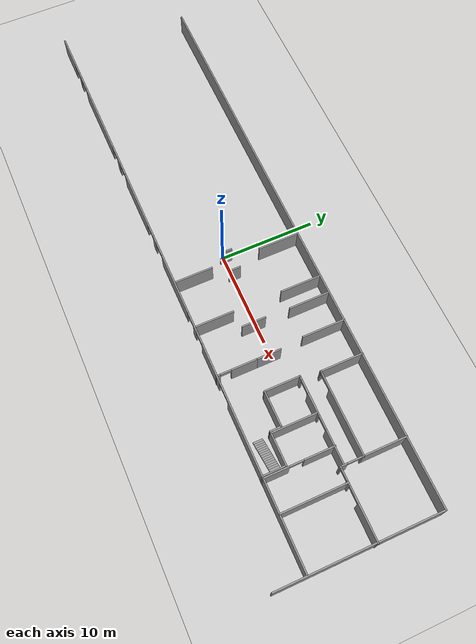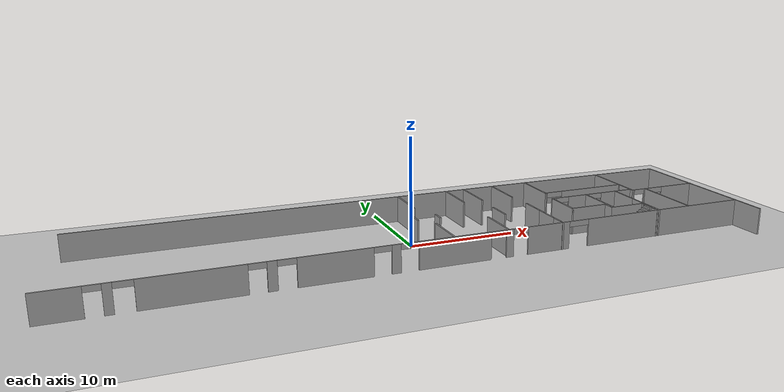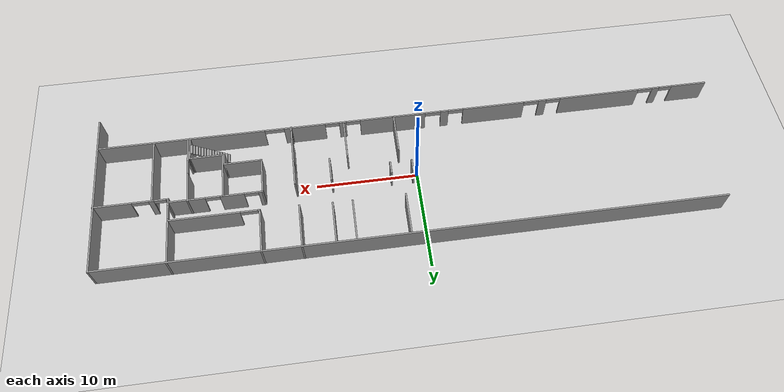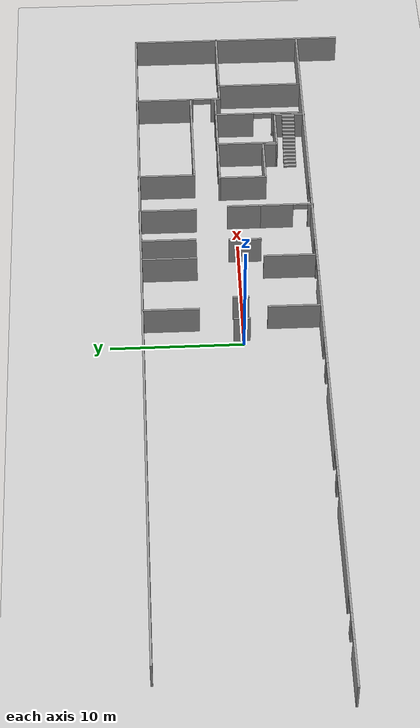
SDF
<sdf version="1.6">
 <world name="default">
  <model name="ground_plane">
   <static>1</static>
   <link name="link">
    <collision name="collision">
     <geometry><plane><normal>0 0 1</normal><size>100 100</size></plane></geometry>
     <surface><friction><ode><mu>100</mu><mu2>50</mu2></ode></friction></surface>
    </collision>
    <visual name="visual">
     <cast_shadows>0</cast_shadows>
     <geometry><plane><normal>0 0 1</normal><size>100 100</size></plane></geometry>
     <material>
      <script><uri>file://media/materials/scripts/gazebo.material</uri><name>Gazebo/Grey</name></script>
     </material>
    </visual>
   </link>
  </model>
  <model name="Se1_cut">
   <pose>-1.39677 1.1644 0 0 -0 0</pose>
   <link name="Stairs_1">
    <visual name="Stairs_1_Visual_0">
     <pose>20.036 -5.73074 0.083333 0 -0 1.5708</pose>
     <geometry><box><size>1 0.233333 0.166667</size></box></geometry>
     <material>
      <script><uri>file://media/materials/scripts/gazebo.material</uri><name>Gazebo/Grey</name></script>
      <ambient>1 1 1 1</ambient>
     </material>
    </visual>
    <collision name="Stairs_1_Collision_0">
     <geometry><box><size>1 0.233333 0.166667</size></box></geometry>
     <pose>20.036 -5.73074 0.083333 0 -0 1.5708</pose>
    </collision>
    <visual name="Stairs_1_Visual_1">
     <pose>20.2693 -5.73074 0.25 0 -0 1.5708</pose>
     <geometry><box><size>1 0.233333 0.166667</size></box></geometry>
     <material>
      <script><uri>file://media/materials/scripts/gazebo.material</uri><name>Gazebo/Grey</name></script>
      <ambient>1 1 1 1</ambient>
     </material>
    </visual>
    <collision name="Stairs_1_Collision_1">
     <geometry><box><size>1 0.233333 0.166667</size></box></geometry>
     <pose>20.2693 -5.73074 0.25 0 -0 1.5708</pose>
    </collision>
    <visual name="Stairs_1_Visual_2">
     <pose>20.5026 -5.73074 0.416667 0 -0 1.5708</pose>
     <geometry><box><size>1 0.233333 0.166667</size></box></geometry>
     <material>
      <script><uri>file://media/materials/scripts/gazebo.material</uri><name>Gazebo/Grey</name></script>
      <ambient>1 1 1 1</ambient>
     </material>
    </visual>
    <collision name="Stairs_1_Collision_2">
     <geometry><box><size>1 0.233333 0.166667</size></box></geometry>
     <pose>20.5026 -5.73074 0.416667 0 -0 1.5708</pose>
    </collision>
    <visual name="Stairs_1_Visual_3">
     <pose>20.736 -5.73074 0.583333 0 -0 1.5708</pose>
     <geometry><box><size>1 0.233333 0.166667</size></box></geometry>
     <material>
      <script><uri>file://media/materials/scripts/gazebo.material</uri><name>Gazebo/Grey</name></script>
      <ambient>1 1 1 1</ambient>
     </material>
    </visual>
    <collision name="Stairs_1_Collision_3">
     <geometry><box><size>1 0.233333 0.166667</size></box></geometry>
     <pose>20.736 -5.73074 0.583333 0 -0 1.5708</pose>
    </collision>
    <visual name="Stairs_1_Visual_4">
     <pose>20.9693 -5.73074 0.75 0 -0 1.5708</pose>
     <geometry><box><size>1 0.233333 0.166667</size></box></geometry>
     <material>
      <script><uri>file://media/materials/scripts/gazebo.material</uri><name>Gazebo/Grey</name></script>
      <ambient>1 1 1 1</ambient>
     </material>
    </visual>
    <collision name="Stairs_1_Collision_4">
     <geometry><box><size>1 0.233333 0.166667</size></box></geometry>
     <pose>20.9693 -5.73074 0.75 0 -0 1.5708</pose>
    </collision>
    <visual name="Stairs_1_Visual_5">
     <pose>21.2026 -5.73074 0.916667 0 -0 1.5708</pose>
     <geometry><box><size>1 0.233333 0.166667</size></box></geometry>
     <material>
      <script><uri>file://media/materials/scripts/gazebo.material</uri><name>Gazebo/Grey</name></script>
      <ambient>1 1 1 1</ambient>
     </material>
    </visual>
    <collision name="Stairs_1_Collision_5">
     <geometry><box><size>1 0.233333 0.166667</size></box></geometry>
     <pose>21.2026 -5.73074 0.916667 0 -0 1.5708</pose>
    </collision>
    <visual name="Stairs_1_Visual_6">
     <pose>21.436 -5.73074 1.08333 0 -0 1.5708</pose>
     <geometry><box><size>1 0.233333 0.166667</size></box></geometry>
     <material>
      <script><uri>file://media/materials/scripts/gazebo.material</uri><name>Gazebo/Grey</name></script>
      <ambient>1 1 1 1</ambient>
     </material>
    </visual>
    <collision name="Stairs_1_Collision_6">
     <geometry><box><size>1 0.233333 0.166667</size></box></geometry>
     <pose>21.436 -5.73074 1.08333 0 -0 1.5708</pose>
    </collision>
    <visual name="Stairs_1_Visual_7">
     <pose>21.6693 -5.73074 1.25 0 -0 1.5708</pose>
     <geometry><box><size>1 0.233333 0.166667</size></box></geometry>
     <material>
      <script><uri>file://media/materials/scripts/gazebo.material</uri><name>Gazebo/Grey</name></script>
      <ambient>1 1 1 1</ambient>
     </material>
    </visual>
    <collision name="Stairs_1_Collision_7">
     <geometry><box><size>1 0.233333 0.166667</size></box></geometry>
     <pose>21.6693 -5.73074 1.25 0 -0 1.5708</pose>
    </collision>
    <visual name="Stairs_1_Visual_8">
     <pose>21.9026 -5.73074 1.41667 0 -0 1.5708</pose>
     <geometry><box><size>1 0.233333 0.166667</size></box></geometry>
     <material>
      <script><uri>file://media/materials/scripts/gazebo.material</uri><name>Gazebo/Grey</name></script>
      <ambient>1 1 1 1</ambient>
     </material>
    </visual>
    <collision name="Stairs_1_Collision_8">
     <geometry><box><size>1 0.233333 0.166667</size></box></geometry>
     <pose>21.9026 -5.73074 1.41667 0 -0 1.5708</pose>
    </collision>
    <visual name="Stairs_1_Visual_9">
     <pose>22.136 -5.73074 1.58333 0 -0 1.5708</pose>
     <geometry><box><size>1 0.233333 0.166667</size></box></geometry>
     <material>
      <script><uri>file://media/materials/scripts/gazebo.material</uri><name>Gazebo/Grey</name></script>
      <ambient>1 1 1 1</ambient>
     </material>
    </visual>
    <collision name="Stairs_1_Collision_9">
     <geometry><box><size>1 0.233333 0.166667</size></box></geometry>
     <pose>22.136 -5.73074 1.58333 0 -0 1.5708</pose>
    </collision>
    <visual name="Stairs_1_Visual_10">
     <pose>22.3693 -5.73074 1.75 0 -0 1.5708</pose>
     <geometry><box><size>1 0.233333 0.166667</size></box></geometry>
     <material>
      <script><uri>file://media/materials/scripts/gazebo.material</uri><name>Gazebo/Grey</name></script>
      <ambient>1 1 1 1</ambient>
     </material>
    </visual>
    <collision name="Stairs_1_Collision_10">
     <geometry><box><size>1 0.233333 0.166667</size></box></geometry>
     <pose>22.3693 -5.73074 1.75 0 -0 1.5708</pose>
    </collision>
    <visual name="Stairs_1_Visual_11">
     <pose>22.6026 -5.73074 1.91667 0 -0 1.5708</pose>
     <geometry><box><size>1 0.233333 0.166667</size></box></geometry>
     <material>
      <script><uri>file://media/materials/scripts/gazebo.material</uri><name>Gazebo/Grey</name></script>
      <ambient>1 1 1 1</ambient>
     </material>
    </visual>
    <collision name="Stairs_1_Collision_11">
     <geometry><box><size>1 0.233333 0.166667</size></box></geometry>
     <pose>22.6026 -5.73074 1.91667 0 -0 1.5708</pose>
    </collision>
    <visual name="Stairs_1_Visual_12">
     <pose>22.836 -5.73074 2.08333 0 -0 1.5708</pose>
     <geometry><box><size>1 0.233333 0.166667</size></box></geometry>
     <material>
      <script><uri>file://media/materials/scripts/gazebo.material</uri><name>Gazebo/Grey</name></script>
      <ambient>1 1 1 1</ambient>
     </material>
    </visual>
    <collision name="Stairs_1_Collision_12">
     <geometry><box><size>1 0.233333 0.166667</size></box></geometry>
     <pose>22.836 -5.73074 2.08333 0 -0 1.5708</pose>
    </collision>
    <visual name="Stairs_1_Visual_13">
     <pose>23.0693 -5.73074 2.25 0 -0 1.5708</pose>
     <geometry><box><size>1 0.233333 0.166667</size></box></geometry>
     <material>
      <script><uri>file://media/materials/scripts/gazebo.material</uri><name>Gazebo/Grey</name></script>
      <ambient>1 1 1 1</ambient>
     </material>
    </visual>
    <collision name="Stairs_1_Collision_13">
     <geometry><box><size>1 0.233333 0.166667</size></box></geometry>
     <pose>23.0693 -5.73074 2.25 0 -0 1.5708</pose>
    </collision>
    <visual name="Stairs_1_Visual_14">
     <pose>23.3026 -5.73074 2.41667 0 -0 1.5708</pose>
     <geometry><box><size>1 0.233333 0.166667</size></box></geometry>
     <material>
      <script><uri>file://media/materials/scripts/gazebo.material</uri><name>Gazebo/Grey</name></script>
      <ambient>1 1 1 1</ambient>
     </material>
    </visual>
    <collision name="Stairs_1_Collision_14">
     <geometry><box><size>1 0.233333 0.166667</size></box></geometry>
     <pose>23.3026 -5.73074 2.41667 0 -0 1.5708</pose>
    </collision>
   </link>
   <link name="Wall_10">
    <pose>1.36862 -6.975 0 0 -0 0</pose>
    <visual name="Wall_10_Visual_0">
     <pose>-29.3076 0 1.25 0 -0 0</pose>
     <geometry><box><size>3.63484 0.15 2.5</size></box></geometry>
     <material>
      <script><uri>file://media/materials/scripts/gazebo.material</uri><name>Gazebo/Grey</name></script>
      <ambient>1 1 1 1</ambient>
     </material>
    </visual>
    <collision name="Wall_10_Collision_0">
     <geometry><box><size>3.63484 0.15 2.5</size></box></geometry>
     <pose>-29.3076 0 1.25 0 -0 0</pose>
    </collision>
    <visual name="Wall_10_Visual_1">
     <pose>-25.817 0 1.25 0 -0 0</pose>
     <geometry><box><size>0.713595 0.15 2.5</size></box></geometry>
     <material>
      <script><uri>file://media/materials/scripts/gazebo.material</uri><name>Gazebo/Grey</name></script>
      <ambient>1 1 1 1</ambient>
     </material>
    </visual>
    <collision name="Wall_10_Collision_1">
     <geometry><box><size>0.713595 0.15 2.5</size></box></geometry>
     <pose>-25.817 0 1.25 0 -0 0</pose>
    </collision>
    <visual name="Wall_10_Visual_2">
     <pose>-19.8 0 1.25 0 -0 0</pose>
     <geometry><box><size>8.27129 0.15 2.5</size></box></geometry>
     <material>
      <script><uri>file://media/materials/scripts/gazebo.material</uri><name>Gazebo/Grey</name></script>
      <ambient>1 1 1 1</ambient>
     </material>
    </visual>
    <collision name="Wall_10_Collision_2">
     <geometry><box><size>8.27129 0.15 2.5</size></box></geometry>
     <pose>-19.8 0 1.25 0 -0 0</pose>
    </collision>
    <visual name="Wall_10_Visual_3">
     <pose>-13.8092 0 1.25 0 -0 0</pose>
     <geometry><box><size>0.8001 0.15 2.5</size></box></geometry>
     <material>
      <script><uri>file://media/materials/scripts/gazebo.material</uri><name>Gazebo/Grey</name></script>
      <ambient>1 1 1 1</ambient>
     </material>
    </visual>
    <collision name="Wall_10_Collision_3">
     <geometry><box><size>0.8001 0.15 2.5</size></box></geometry>
     <pose>-13.8092 0 1.25 0 -0 0</pose>
    </collision>
    <visual name="Wall_10_Visual_4">
     <pose>-8.68578 0 1.25 0 -0 0</pose>
     <geometry><box><size>6.35145 0.15 2.5</size></box></geometry>
     <material>
      <script><uri>file://media/materials/scripts/gazebo.material</uri><name>Gazebo/Grey</name></script>
      <ambient>1 1 1 1</ambient>
     </material>
    </visual>
    <collision name="Wall_10_Collision_4">
     <geometry><box><size>6.35145 0.15 2.5</size></box></geometry>
     <pose>-8.68578 0 1.25 0 -0 0</pose>
    </collision>
    <visual name="Wall_10_Visual_5">
     <pose>-3.58549 0 1.25 0 -0 0</pose>
     <geometry><box><size>0.8001 0.15 2.5</size></box></geometry>
     <material>
      <script><uri>file://media/materials/scripts/gazebo.material</uri><name>Gazebo/Grey</name></script>
      <ambient>1 1 1 1</ambient>
     </material>
    </visual>
    <collision name="Wall_10_Collision_5">
     <geometry><box><size>0.8001 0.15 2.5</size></box></geometry>
     <pose>-3.58549 0 1.25 0 -0 0</pose>
    </collision>
    <visual name="Wall_10_Visual_6">
     <pose>1.72877 0 1.25 0 -0 0</pose>
     <geometry><box><size>6.64058 0.15 2.5</size></box></geometry>
     <material>
      <script><uri>file://media/materials/scripts/gazebo.material</uri><name>Gazebo/Grey</name></script>
      <ambient>1 1 1 1</ambient>
     </material>
    </visual>
    <collision name="Wall_10_Collision_6">
     <geometry><box><size>6.64058 0.15 2.5</size></box></geometry>
     <pose>1.72877 0 1.25 0 -0 0</pose>
    </collision>
    <visual name="Wall_10_Visual_7">
     <pose>6.82907 0 1.25 0 -0 0</pose>
     <geometry><box><size>0.696012 0.15 2.5</size></box></geometry>
     <material>
      <script><uri>file://media/materials/scripts/gazebo.material</uri><name>Gazebo/Grey</name></script>
      <ambient>1 1 1 1</ambient>
     </material>
    </visual>
    <collision name="Wall_10_Collision_7">
     <geometry><box><size>0.696012 0.15 2.5</size></box></geometry>
     <pose>6.82907 0 1.25 0 -0 0</pose>
    </collision>
    <visual name="Wall_10_Visual_8">
     <pose>10.6539 0 1.25 0 -0 0</pose>
     <geometry><box><size>4.13586 0.15 2.5</size></box></geometry>
     <material>
      <script><uri>file://media/materials/scripts/gazebo.material</uri><name>Gazebo/Grey</name></script>
      <ambient>1 1 1 1</ambient>
     </material>
    </visual>
    <collision name="Wall_10_Collision_8">
     <geometry><box><size>4.13586 0.15 2.5</size></box></geometry>
     <pose>10.6539 0 1.25 0 -0 0</pose>
    </collision>
    <visual name="Wall_10_Visual_9">
     <pose>22.8921 0 1.25 0 -0 0</pose>
     <geometry><box><size>16.4658 0.15 2.5</size></box></geometry>
     <material>
      <script><uri>file://media/materials/scripts/gazebo.material</uri><name>Gazebo/Grey</name></script>
      <ambient>1 1 1 1</ambient>
     </material>
    </visual>
    <collision name="Wall_10_Collision_9">
     <geometry><box><size>16.4658 0.15 2.5</size></box></geometry>
     <pose>22.8921 0 1.25 0 -0 0</pose>
    </collision>
    <visual name="Wall_10_Visual_10">
     <pose>-26.832 0 2.25 0 -0 0</pose>
     <geometry><box><size>1.31635 0.15 0.5</size></box></geometry>
     <material>
      <script><uri>file://media/materials/scripts/gazebo.material</uri><name>Gazebo/Grey</name></script>
      <ambient>1 1 1 1</ambient>
     </material>
    </visual>
    <collision name="Wall_10_Collision_10">
     <geometry><box><size>1.31635 0.15 0.5</size></box></geometry>
     <pose>-26.832 0 2.25 0 -0 0</pose>
    </collision>
    <visual name="Wall_10_Visual_11">
     <pose>-24.6979 0 2.25 0 -0 0</pose>
     <geometry><box><size>1.52453 0.15 0.5</size></box></geometry>
     <material>
      <script><uri>file://media/materials/scripts/gazebo.material</uri><name>Gazebo/Grey</name></script>
      <ambient>1 1 1 1</ambient>
     </material>
    </visual>
    <collision name="Wall_10_Collision_11">
     <geometry><box><size>1.52453 0.15 0.5</size></box></geometry>
     <pose>-24.6979 0 2.25 0 -0 0</pose>
    </collision>
    <visual name="Wall_10_Visual_12">
     <pose>-14.9368 0 2.25 0 -0 0</pose>
     <geometry><box><size>1.45514 0.15 0.5</size></box></geometry>
     <material>
      <script><uri>file://media/materials/scripts/gazebo.material</uri><name>Gazebo/Grey</name></script>
      <ambient>1 1 1 1</ambient>
     </material>
    </visual>
    <collision name="Wall_10_Collision_12">
     <geometry><box><size>1.45514 0.15 0.5</size></box></geometry>
     <pose>-14.9368 0 2.25 0 -0 0</pose>
    </collision>
    <visual name="Wall_10_Visual_13">
     <pose>-12.6353 0 2.25 0 -0 0</pose>
     <geometry><box><size>1.54766 0.15 0.5</size></box></geometry>
     <material>
      <script><uri>file://media/materials/scripts/gazebo.material</uri><name>Gazebo/Grey</name></script>
      <ambient>1 1 1 1</ambient>
     </material>
    </visual>
    <collision name="Wall_10_Collision_13">
     <geometry><box><size>1.54766 0.15 0.5</size></box></geometry>
     <pose>-12.6353 0 2.25 0 -0 0</pose>
    </collision>
    <visual name="Wall_10_Visual_14">
     <pose>-4.7478 0 2.25 0 -0 0</pose>
     <geometry><box><size>1.52453 0.15 0.5</size></box></geometry>
     <material>
      <script><uri>file://media/materials/scripts/gazebo.material</uri><name>Gazebo/Grey</name></script>
      <ambient>1 1 1 1</ambient>
     </material>
    </visual>
    <collision name="Wall_10_Collision_14">
     <geometry><box><size>1.52453 0.15 0.5</size></box></geometry>
     <pose>-4.7478 0 2.25 0 -0 0</pose>
    </collision>
    <visual name="Wall_10_Visual_15">
     <pose>-2.38848 0 2.25 0 -0 0</pose>
     <geometry><box><size>1.59392 0.15 0.5</size></box></geometry>
     <material>
      <script><uri>file://media/materials/scripts/gazebo.material</uri><name>Gazebo/Grey</name></script>
      <ambient>1 1 1 1</ambient>
     </material>
    </visual>
    <collision name="Wall_10_Collision_15">
     <geometry><box><size>1.59392 0.15 0.5</size></box></geometry>
     <pose>-2.38848 0 2.25 0 -0 0</pose>
    </collision>
    <visual name="Wall_10_Visual_16">
     <pose>5.76506 0 2.25 0 -0 0</pose>
     <geometry><box><size>1.432 0.15 0.5</size></box></geometry>
     <material>
      <script><uri>file://media/materials/scripts/gazebo.material</uri><name>Gazebo/Grey</name></script>
      <ambient>1 1 1 1</ambient>
     </material>
    </visual>
    <collision name="Wall_10_Collision_16">
     <geometry><box><size>1.432 0.15 0.5</size></box></geometry>
     <pose>5.76506 0 2.25 0 -0 0</pose>
    </collision>
    <visual name="Wall_10_Visual_17">
     <pose>7.88151 0 2.25 0 -0 0</pose>
     <geometry><box><size>1.40887 0.15 0.5</size></box></geometry>
     <material>
      <script><uri>file://media/materials/scripts/gazebo.material</uri><name>Gazebo/Grey</name></script>
      <ambient>1 1 1 1</ambient>
     </material>
    </visual>
    <collision name="Wall_10_Collision_17">
     <geometry><box><size>1.40887 0.15 0.5</size></box></geometry>
     <pose>7.88151 0 2.25 0 -0 0</pose>
    </collision>
    <visual name="Wall_10_Visual_18">
     <pose>13.6905 0 2.25 0 -0 0</pose>
     <geometry><box><size>1.93741 0.15 0.5</size></box></geometry>
     <material>
      <script><uri>file://media/materials/scripts/gazebo.material</uri><name>Gazebo/Grey</name></script>
      <ambient>1 1 1 1</ambient>
     </material>
    </visual>
    <collision name="Wall_10_Collision_18">
     <geometry><box><size>1.93741 0.15 0.5</size></box></geometry>
     <pose>13.6905 0 2.25 0 -0 0</pose>
    </collision>
   </link>
   <link name="Wall_13">
    <pose>13.3997 -4.96918 0 0 0 -1.5708</pose>
    <visual name="Wall_13_Visual_0">
     <pose>-0.786431 0 1.25 0 -0 0</pose>
     <geometry><box><size>2.67714 0.15 2.5</size></box></geometry>
     <material>
      <script><uri>file://media/materials/scripts/gazebo.material</uri><name>Gazebo/Grey</name></script>
      <ambient>1 1 1 1</ambient>
     </material>
    </visual>
    <collision name="Wall_13_Collision_0">
     <geometry><box><size>2.67714 0.15 2.5</size></box></geometry>
     <pose>-0.786431 0 1.25 0 -0 0</pose>
    </collision>
    <visual name="Wall_13_Visual_1">
     <pose>1.90422 0 1.25 0 -0 0</pose>
     <geometry><box><size>0.441555 0.15 2.5</size></box></geometry>
     <material>
      <script><uri>file://media/materials/scripts/gazebo.material</uri><name>Gazebo/Grey</name></script>
      <ambient>1 1 1 1</ambient>
     </material>
    </visual>
    <collision name="Wall_13_Collision_1">
     <geometry><box><size>0.441555 0.15 2.5</size></box></geometry>
     <pose>1.90422 0 1.25 0 -0 0</pose>
    </collision>
    <visual name="Wall_13_Visual_2">
     <pose>1.11779 0 2.25 0 -0 0</pose>
     <geometry><box><size>1.13131 0.15 0.5</size></box></geometry>
     <material>
      <script><uri>file://media/materials/scripts/gazebo.material</uri><name>Gazebo/Grey</name></script>
      <ambient>1 1 1 1</ambient>
     </material>
    </visual>
    <collision name="Wall_13_Collision_2">
     <geometry><box><size>1.13131 0.15 0.5</size></box></geometry>
     <pose>1.11779 0 2.25 0 -0 0</pose>
    </collision>
   </link>
   <link name="Wall_16">
    <collision name="Wall_16_Collision">
     <geometry><box><size>2.61111 0.15 2.5</size></box></geometry>
     <pose>0 0 1.25 0 -0 0</pose>
    </collision>
    <visual name="Wall_16_Visual">
     <pose>0 0 1.25 0 -0 0</pose>
     <geometry><box><size>2.61111 0.15 2.5</size></box></geometry>
     <material>
      <script><uri>file://media/materials/scripts/gazebo.material</uri><name>Gazebo/Grey</name></script>
      <ambient>1 1 1 1</ambient>
     </material>
    </visual>
    <pose>13.3997 -1.68863 0 0 0 -1.5708</pose>
   </link>
   <link name="Wall_37">
    <collision name="Wall_37_Collision">
     <geometry><box><size>1.25 0.15 2.5</size></box></geometry>
     <pose>0 0 1.25 0 -0 0</pose>
    </collision>
    <visual name="Wall_37_Visual">
     <pose>0 0 1.25 0 -0 0</pose>
     <geometry><box><size>1.25 0.15 2.5</size></box></geometry>
     <material>
      <script><uri>file://media/materials/scripts/gazebo.material</uri><name>Gazebo/Grey</name></script>
      <ambient>1 1 1 1</ambient>
     </material>
    </visual>
    <pose>1.889 -0.998521 0 0 0 -1.5708</pose>
   </link>
   <link name="Wall_39">
    <collision name="Wall_39_Collision">
     <geometry><box><size>1.25 0.15 2.5</size></box></geometry>
     <pose>0 0 1.25 0 -0 0</pose>
    </collision>
    <visual name="Wall_39_Visual">
     <pose>0 0 1.25 0 -0 0</pose>
     <geometry><box><size>1.25 0.15 2.5</size></box></geometry>
     <material>
      <script><uri>file://media/materials/scripts/gazebo.material</uri><name>Gazebo/Grey</name></script>
      <ambient>1 1 1 1</ambient>
     </material>
    </visual>
    <pose>4.019 -1.00852 0 0 0 -1.5708</pose>
   </link>
   <link name="Wall_4">
    <collision name="Wall_4_Collision">
     <geometry><box><size>16.75 0.15 2.5</size></box></geometry>
     <pose>0 0 1.25 0 -0 0</pose>
    </collision>
    <visual name="Wall_4_Visual">
     <pose>0 0 1.25 0 -0 0</pose>
     <geometry><box><size>16.75 0.15 2.5</size></box></geometry>
     <material>
      <script><uri>file://media/materials/scripts/gazebo.material</uri><name>Gazebo/Grey</name></script>
      <ambient>1 1 1 1</ambient>
     </material>
    </visual>
    <pose>32.5186 -1.925 0 0 -0 1.5708</pose>
   </link>
   <link name="Wall_41">
    <collision name="Wall_41_Collision">
     <geometry><box><size>2.5 0.15 2.5</size></box></geometry>
     <pose>0 0 1.25 0 -0 0</pose>
    </collision>
    <visual name="Wall_41_Visual">
     <pose>0 0 1.25 0 -0 0</pose>
     <geometry><box><size>2.5 0.15 2.5</size></box></geometry>
     <material>
      <script><uri>file://media/materials/scripts/gazebo.material</uri><name>Gazebo/Grey</name></script>
      <ambient>1 1 1 1</ambient>
     </material>
    </visual>
    <pose>9.879 -1.60352 0 0 0 -1.5708</pose>
   </link>
   <link name="Wall_47">
    <collision name="Wall_47_Collision">
     <geometry><box><size>4.5 0.15 2.5</size></box></geometry>
     <pose>0 0 1.25 0 -0 0</pose>
    </collision>
    <visual name="Wall_47_Visual">
     <pose>0 0 1.25 0 -0 0</pose>
     <geometry><box><size>4.5 0.15 2.5</size></box></geometry>
     <material>
      <script><uri>file://media/materials/scripts/gazebo.material</uri><name>Gazebo/Grey</name></script>
      <ambient>1 1 1 1</ambient>
     </material>
    </visual>
    <pose>13.1471 4.23874 0 0 -0 1.5708</pose>
   </link>
   <link name="Wall_5">
    <collision name="Wall_5_Collision">
     <geometry><box><size>60.25 0.15 2.5</size></box></geometry>
     <pose>0 0 1.25 0 -0 0</pose>
    </collision>
    <visual name="Wall_5_Visual">
     <pose>0 0 1.25 0 -0 0</pose>
     <geometry><box><size>60.25 0.15 2.5</size></box></geometry>
     <material>
      <script><uri>file://media/materials/scripts/gazebo.material</uri><name>Gazebo/Grey</name></script>
      <ambient>1 1 1 1</ambient>
     </material>
    </visual>
    <pose>2.46862 6.375 0 0 -0 3.14159</pose>
   </link>
   <link name="Wall_59">
    <collision name="Wall_59_Collision">
     <geometry><box><size>4.25 0.15 2.5</size></box></geometry>
     <pose>0 0 1.25 0 -0 0</pose>
    </collision>
    <visual name="Wall_59_Visual">
     <pose>0 0 1.25 0 -0 0</pose>
     <geometry><box><size>4.25 0.15 2.5</size></box></geometry>
     <material>
      <script><uri>file://media/materials/scripts/gazebo.material</uri><name>Gazebo/Grey</name></script>
      <ambient>1 1 1 1</ambient>
     </material>
    </visual>
    <pose>2.96947 4.24479 0 0 0 -1.5708</pose>
   </link>
   <link name="Wall_61">
    <collision name="Wall_61_Collision">
     <geometry><box><size>4.25 0.15 2.5</size></box></geometry>
     <pose>0 0 1.25 0 -0 0</pose>
    </collision>
    <visual name="Wall_61_Visual">
     <pose>0 0 1.25 0 -0 0</pose>
     <geometry><box><size>4.25 0.15 2.5</size></box></geometry>
     <material>
      <script><uri>file://media/materials/scripts/gazebo.material</uri><name>Gazebo/Grey</name></script>
      <ambient>1 1 1 1</ambient>
     </material>
    </visual>
    <pose>8.07671 4.24479 0 0 0 -1.5708</pose>
   </link>
   <link name="Wall_63">
    <collision name="Wall_63_Collision">
     <geometry><box><size>4.25 0.15 2.5</size></box></geometry>
     <pose>0 0 1.25 0 -0 0</pose>
    </collision>
    <visual name="Wall_63_Visual">
     <pose>0 0 1.25 0 -0 0</pose>
     <geometry><box><size>4.25 0.15 2.5</size></box></geometry>
     <material>
      <script><uri>file://media/materials/scripts/gazebo.material</uri><name>Gazebo/Grey</name></script>
      <ambient>1 1 1 1</ambient>
     </material>
    </visual>
    <pose>9.99193 4.24479 0 0 0 -1.5708</pose>
   </link>
   <link name="Wall_65">
    <collision name="Wall_65_Collision">
     <geometry><box><size>4.5 0.15 2.5</size></box></geometry>
     <pose>0 0 1.25 0 -0 0</pose>
    </collision>
    <visual name="Wall_65_Visual">
     <pose>0 0 1.25 0 -0 0</pose>
     <geometry><box><size>4.5 0.15 2.5</size></box></geometry>
     <material>
      <script><uri>file://media/materials/scripts/gazebo.material</uri><name>Gazebo/Grey</name></script>
      <ambient>1 1 1 1</ambient>
     </material>
    </visual>
    <pose>16.8814 4.22619 0 0 0 -1.5708</pose>
   </link>
   <link name="Wall_66">
    <pose>21.1814 2.05119 0 0 -0 0</pose>
    <visual name="Wall_66_Visual_0">
     <pose>-4.25666 0 1.25 0 -0 0</pose>
     <geometry><box><size>0.236679 0.15 2.5</size></box></geometry>
     <material>
      <script><uri>file://media/materials/scripts/gazebo.material</uri><name>Gazebo/Grey</name></script>
      <ambient>1 1 1 1</ambient>
     </material>
    </visual>
    <collision name="Wall_66_Collision_0">
     <geometry><box><size>0.236679 0.15 2.5</size></box></geometry>
     <pose>-4.25666 0 1.25 0 -0 0</pose>
    </collision>
    <visual name="Wall_66_Visual_1">
     <pose>0.954042 0 1.25 0 -0 0</pose>
     <geometry><box><size>6.84192 0.15 2.5</size></box></geometry>
     <material>
      <script><uri>file://media/materials/scripts/gazebo.material</uri><name>Gazebo/Grey</name></script>
      <ambient>1 1 1 1</ambient>
     </material>
    </visual>
    <collision name="Wall_66_Collision_1">
     <geometry><box><size>6.84192 0.15 2.5</size></box></geometry>
     <pose>0.954042 0 1.25 0 -0 0</pose>
    </collision>
    <visual name="Wall_66_Visual_2">
     <pose>-3.30262 0 2.25 0 -0 0</pose>
     <geometry><box><size>1.67141 0.15 0.5</size></box></geometry>
     <material>
      <script><uri>file://media/materials/scripts/gazebo.material</uri><name>Gazebo/Grey</name></script>
      <ambient>1 1 1 1</ambient>
     </material>
    </visual>
    <collision name="Wall_66_Collision_2">
     <geometry><box><size>1.67141 0.15 0.5</size></box></geometry>
     <pose>-3.30262 0 2.25 0 -0 0</pose>
    </collision>
   </link>
   <link name="Wall_67">
    <collision name="Wall_67_Collision">
     <geometry><box><size>4.5 0.15 2.5</size></box></geometry>
     <pose>0 0 1.25 0 -0 0</pose>
    </collision>
    <visual name="Wall_67_Visual">
     <pose>0 0 1.25 0 -0 0</pose>
     <geometry><box><size>4.5 0.15 2.5</size></box></geometry>
     <material>
      <script><uri>file://media/materials/scripts/gazebo.material</uri><name>Gazebo/Grey</name></script>
      <ambient>1 1 1 1</ambient>
     </material>
    </visual>
    <pose>25.4814 4.22619 0 0 -0 1.5708</pose>
   </link>
   <link name="Wall_69">
    <pose>25.4814 0.876187 0 0 0 -1.5708</pose>
    <visual name="Wall_69_Visual_0">
     <pose>-1.11105 0 1.25 0 -0 0</pose>
     <geometry><box><size>0.278249 0.15 2.5</size></box></geometry>
     <material>
      <script><uri>file://media/materials/scripts/gazebo.material</uri><name>Gazebo/Grey</name></script>
      <ambient>1 1 1 1</ambient>
     </material>
    </visual>
    <collision name="Wall_69_Collision_0">
     <geometry><box><size>0.278249 0.15 2.5</size></box></geometry>
     <pose>-1.11105 0 1.25 0 -0 0</pose>
    </collision>
    <visual name="Wall_69_Visual_1">
     <pose>0.855126 0 1.25 0 -0 0</pose>
     <geometry><box><size>0.790095 0.15 2.5</size></box></geometry>
     <material>
      <script><uri>file://media/materials/scripts/gazebo.material</uri><name>Gazebo/Grey</name></script>
      <ambient>1 1 1 1</ambient>
     </material>
    </visual>
    <collision name="Wall_69_Collision_1">
     <geometry><box><size>0.790095 0.15 2.5</size></box></geometry>
     <pose>0.855126 0 1.25 0 -0 0</pose>
    </collision>
    <visual name="Wall_69_Visual_2">
     <pose>-0.255923 0 2.25 0 -0 0</pose>
     <geometry><box><size>1.432 0.15 0.5</size></box></geometry>
     <material>
      <script><uri>file://media/materials/scripts/gazebo.material</uri><name>Gazebo/Grey</name></script>
      <ambient>1 1 1 1</ambient>
     </material>
    </visual>
    <collision name="Wall_69_Collision_2">
     <geometry><box><size>1.432 0.15 0.5</size></box></geometry>
     <pose>-0.255923 0 2.25 0 -0 0</pose>
    </collision>
   </link>
   <link name="Wall_70">
    <pose>29.0314 -0.298813 0 0 -0 0</pose>
    <visual name="Wall_70_Visual_0">
     <pose>-3.49078 0 1.25 0 -0 0</pose>
     <geometry><box><size>0.268443 0.15 2.5</size></box></geometry>
     <material>
      <script><uri>file://media/materials/scripts/gazebo.material</uri><name>Gazebo/Grey</name></script>
      <ambient>1 1 1 1</ambient>
     </material>
    </visual>
    <collision name="Wall_70_Collision_0">
     <geometry><box><size>0.268443 0.15 2.5</size></box></geometry>
     <pose>-3.49078 0 1.25 0 -0 0</pose>
    </collision>
    <visual name="Wall_70_Visual_1">
     <pose>-1.9689 0 1.25 0 -0 0</pose>
     <geometry><box><size>0.496511 0.15 2.5</size></box></geometry>
     <material>
      <script><uri>file://media/materials/scripts/gazebo.material</uri><name>Gazebo/Grey</name></script>
      <ambient>1 1 1 1</ambient>
     </material>
    </visual>
    <collision name="Wall_70_Collision_1">
     <geometry><box><size>0.496511 0.15 2.5</size></box></geometry>
     <pose>-1.9689 0 1.25 0 -0 0</pose>
    </collision>
    <visual name="Wall_70_Visual_2">
     <pose>1.76128 0 1.25 0 -0 0</pose>
     <geometry><box><size>3.72744 0.15 2.5</size></box></geometry>
     <material>
      <script><uri>file://media/materials/scripts/gazebo.material</uri><name>Gazebo/Grey</name></script>
      <ambient>1 1 1 1</ambient>
     </material>
    </visual>
    <collision name="Wall_70_Collision_2">
     <geometry><box><size>3.72744 0.15 2.5</size></box></geometry>
     <pose>1.76128 0 1.25 0 -0 0</pose>
    </collision>
    <visual name="Wall_70_Visual_3">
     <pose>-2.78686 0 2.25 0 -0 0</pose>
     <geometry><box><size>1.1394 0.15 0.5</size></box></geometry>
     <material>
      <script><uri>file://media/materials/scripts/gazebo.material</uri><name>Gazebo/Grey</name></script>
      <ambient>1 1 1 1</ambient>
     </material>
    </visual>
    <collision name="Wall_70_Collision_3">
     <geometry><box><size>1.1394 0.15 0.5</size></box></geometry>
     <pose>-2.78686 0 2.25 0 -0 0</pose>
    </collision>
    <visual name="Wall_70_Visual_4">
     <pose>-0.911541 0 2.25 0 -0 0</pose>
     <geometry><box><size>1.6182 0.15 0.5</size></box></geometry>
     <material>
      <script><uri>file://media/materials/scripts/gazebo.material</uri><name>Gazebo/Grey</name></script>
      <ambient>1 1 1 1</ambient>
     </material>
    </visual>
    <collision name="Wall_70_Collision_4">
     <geometry><box><size>1.6182 0.15 0.5</size></box></geometry>
     <pose>-0.911541 0 2.25 0 -0 0</pose>
    </collision>
   </link>
   <link name="Wall_72">
    <collision name="Wall_72_Collision">
     <geometry><box><size>3.75 0.15 2.5</size></box></geometry>
     <pose>0 0 1.25 0 -0 0</pose>
    </collision>
    <visual name="Wall_72_Visual">
     <pose>0 0 1.25 0 -0 0</pose>
     <geometry><box><size>3.75 0.15 2.5</size></box></geometry>
     <material>
      <script><uri>file://media/materials/scripts/gazebo.material</uri><name>Gazebo/Grey</name></script>
      <ambient>1 1 1 1</ambient>
     </material>
    </visual>
    <pose>16.5155 -1.74337 0 0 0 -1.5708</pose>
   </link>
   <link name="Wall_73">
    <collision name="Wall_73_Collision">
     <geometry><box><size>3.75 0.15 2.5</size></box></geometry>
     <pose>0 0 1.25 0 -0 0</pose>
    </collision>
    <visual name="Wall_73_Visual">
     <pose>0 0 1.25 0 -0 0</pose>
     <geometry><box><size>3.75 0.15 2.5</size></box></geometry>
     <material>
      <script><uri>file://media/materials/scripts/gazebo.material</uri><name>Gazebo/Grey</name></script>
      <ambient>1 1 1 1</ambient>
     </material>
    </visual>
    <pose>18.3155 -3.54337 0 0 -0 0</pose>
   </link>
   <link name="Wall_74">
    <collision name="Wall_74_Collision">
     <geometry><box><size>1.25 0.15 2.5</size></box></geometry>
     <pose>0 0 1.25 0 -0 0</pose>
    </collision>
    <visual name="Wall_74_Visual">
     <pose>0 0 1.25 0 -0 0</pose>
     <geometry><box><size>1.25 0.15 2.5</size></box></geometry>
     <material>
      <script><uri>file://media/materials/scripts/gazebo.material</uri><name>Gazebo/Grey</name></script>
      <ambient>1 1 1 1</ambient>
     </material>
    </visual>
    <pose>20.1155 -4.09337 0 0 0 -1.5708</pose>
   </link>
   <link name="Wall_75">
    <collision name="Wall_75_Collision">
     <geometry><box><size>3.5 0.15 2.5</size></box></geometry>
     <pose>0 0 1.25 0 -0 0</pose>
    </collision>
    <visual name="Wall_75_Visual">
     <pose>0 0 1.25 0 -0 0</pose>
     <geometry><box><size>3.5 0.15 2.5</size></box></geometry>
     <material>
      <script><uri>file://media/materials/scripts/gazebo.material</uri><name>Gazebo/Grey</name></script>
      <ambient>1 1 1 1</ambient>
     </material>
    </visual>
    <pose>21.7905 -4.64337 0 0 -0 0</pose>
   </link>
   <link name="Wall_77">
    <collision name="Wall_77_Collision">
     <geometry><box><size>2.5 0.15 2.5</size></box></geometry>
     <pose>0 0 1.25 0 -0 0</pose>
    </collision>
    <visual name="Wall_77_Visual">
     <pose>0 0 1.25 0 -0 0</pose>
     <geometry><box><size>2.5 0.15 2.5</size></box></geometry>
     <material>
      <script><uri>file://media/materials/scripts/gazebo.material</uri><name>Gazebo/Grey</name></script>
      <ambient>1 1 1 1</ambient>
     </material>
    </visual>
    <pose>23.4655 -5.81837 0 0 0 -1.5708</pose>
   </link>
   <link name="Wall_79">
    <pose>20.9405 0.056629 0 0 -0 0</pose>
    <visual name="Wall_79_Visual_0">
     <pose>-4.25855 0 1.25 0 -0 0</pose>
     <geometry><box><size>0.482903 0.15 2.5</size></box></geometry>
     <material>
      <script><uri>file://media/materials/scripts/gazebo.material</uri><name>Gazebo/Grey</name></script>
      <ambient>1 1 1 1</ambient>
     </material>
    </visual>
    <collision name="Wall_79_Collision_0">
     <geometry><box><size>0.482903 0.15 2.5</size></box></geometry>
     <pose>-4.25855 0 1.25 0 -0 0</pose>
    </collision>
    <visual name="Wall_79_Visual_1">
     <pose>-1.51223 0 1.25 0 -0 0</pose>
     <geometry><box><size>2.30532 0.15 2.5</size></box></geometry>
     <material>
      <script><uri>file://media/materials/scripts/gazebo.material</uri><name>Gazebo/Grey</name></script>
      <ambient>1 1 1 1</ambient>
     </material>
    </visual>
    <collision name="Wall_79_Collision_1">
     <geometry><box><size>2.30532 0.15 2.5</size></box></geometry>
     <pose>-1.51223 0 1.25 0 -0 0</pose>
    </collision>
    <visual name="Wall_79_Visual_2">
     <pose>2.77292 0 1.25 0 -0 0</pose>
     <geometry><box><size>3.45417 0.15 2.5</size></box></geometry>
     <material>
      <script><uri>file://media/materials/scripts/gazebo.material</uri><name>Gazebo/Grey</name></script>
      <ambient>1 1 1 1</ambient>
     </material>
    </visual>
    <collision name="Wall_79_Collision_2">
     <geometry><box><size>3.45417 0.15 2.5</size></box></geometry>
     <pose>2.77292 0 1.25 0 -0 0</pose>
    </collision>
    <visual name="Wall_79_Visual_3">
     <pose>-3.341 0 2.25 0 -0 0</pose>
     <geometry><box><size>1.3522 0.15 0.5</size></box></geometry>
     <material>
      <script><uri>file://media/materials/scripts/gazebo.material</uri><name>Gazebo/Grey</name></script>
      <ambient>1 1 1 1</ambient>
     </material>
    </visual>
    <collision name="Wall_79_Collision_3">
     <geometry><box><size>1.3522 0.15 0.5</size></box></geometry>
     <pose>-3.341 0 2.25 0 -0 0</pose>
    </collision>
    <visual name="Wall_79_Visual_4">
     <pose>0.343132 0 2.25 0 -0 0</pose>
     <geometry><box><size>1.4054 0.15 0.5</size></box></geometry>
     <material>
      <script><uri>file://media/materials/scripts/gazebo.material</uri><name>Gazebo/Grey</name></script>
      <ambient>1 1 1 1</ambient>
     </material>
    </visual>
    <collision name="Wall_79_Collision_4">
     <geometry><box><size>1.4054 0.15 0.5</size></box></geometry>
     <pose>0.343132 0 2.25 0 -0 0</pose>
    </collision>
   </link>
   <link name="Wall_81">
    <collision name="Wall_81_Collision">
     <geometry><box><size>4.75 0.15 2.5</size></box></geometry>
     <pose>0 0 1.25 0 -0 0</pose>
    </collision>
    <visual name="Wall_81_Visual">
     <pose>0 0 1.25 0 -0 0</pose>
     <geometry><box><size>4.75 0.15 2.5</size></box></geometry>
     <material>
      <script><uri>file://media/materials/scripts/gazebo.material</uri><name>Gazebo/Grey</name></script>
      <ambient>1 1 1 1</ambient>
     </material>
    </visual>
    <pose>20.2773 -2.2622 0 0 0 -1.5708</pose>
   </link>
   <link name="Wall_83">
    <pose>23.6544 -3.44281 0 0 0 -1.5708</pose>
    <visual name="Wall_83_Visual_0">
     <pose>-2.05064 0 1.25 0 -0 0</pose>
     <geometry><box><size>3.14871 0.15 2.5</size></box></geometry>
     <material>
      <script><uri>file://media/materials/scripts/gazebo.material</uri><name>Gazebo/Grey</name></script>
      <ambient>1 1 1 1</ambient>
     </material>
    </visual>
    <collision name="Wall_83_Collision_0">
     <geometry><box><size>3.14871 0.15 2.5</size></box></geometry>
     <pose>-2.05064 0 1.25 0 -0 0</pose>
    </collision>
    <visual name="Wall_83_Visual_1">
     <pose>2.30366 0 1.25 0 -0 0</pose>
     <geometry><box><size>2.64268 0.15 2.5</size></box></geometry>
     <material>
      <script><uri>file://media/materials/scripts/gazebo.material</uri><name>Gazebo/Grey</name></script>
      <ambient>1 1 1 1</ambient>
     </material>
    </visual>
    <collision name="Wall_83_Collision_1">
     <geometry><box><size>2.64268 0.15 2.5</size></box></geometry>
     <pose>2.30366 0 1.25 0 -0 0</pose>
    </collision>
    <visual name="Wall_83_Visual_2">
     <pose>0.253014 0 2.25 0 -0 0</pose>
     <geometry><box><size>1.4586 0.15 0.5</size></box></geometry>
     <material>
      <script><uri>file://media/materials/scripts/gazebo.material</uri><name>Gazebo/Grey</name></script>
      <ambient>1 1 1 1</ambient>
     </material>
    </visual>
    <collision name="Wall_83_Collision_2">
     <geometry><box><size>1.4586 0.15 0.5</size></box></geometry>
     <pose>0.253014 0 2.25 0 -0 0</pose>
    </collision>
   </link>
   <link name="Wall_85">
    <collision name="Wall_85_Collision">
     <geometry><box><size>6.75 0.15 2.5</size></box></geometry>
     <pose>0 0 1.25 0 -0 0</pose>
    </collision>
    <visual name="Wall_85_Visual">
     <pose>0 0 1.25 0 -0 0</pose>
     <geometry><box><size>6.75 0.15 2.5</size></box></geometry>
     <material>
      <script><uri>file://media/materials/scripts/gazebo.material</uri><name>Gazebo/Grey</name></script>
      <ambient>1 1 1 1</ambient>
     </material>
    </visual>
    <pose>27.0083 -3.60916 0 0 0 -1.5708</pose>
   </link>
   <link name="Wall_97">
    <collision name="Wall_97_Collision">
     <geometry><box><size>4 0.15 2.5</size></box></geometry>
     <pose>0 0 1.25 0 -0 0</pose>
    </collision>
    <visual name="Wall_97_Visual">
     <pose>0 0 1.25 0 -0 0</pose>
     <geometry><box><size>4 0.15 2.5</size></box></geometry>
     <material>
      <script><uri>file://media/materials/scripts/gazebo.material</uri><name>Gazebo/Grey</name></script>
      <ambient>1 1 1 1</ambient>
     </material>
    </visual>
    <pose>2.99871 -4.95749 0 0 0 -1.5708</pose>
   </link>
   <link name="Wall_99">
    <collision name="Wall_99_Collision">
     <geometry><box><size>4 0.15 2.5</size></box></geometry>
     <pose>0 0 1.25 0 -0 0</pose>
    </collision>
    <visual name="Wall_99_Visual">
     <pose>0 0 1.25 0 -0 0</pose>
     <geometry><box><size>4 0.15 2.5</size></box></geometry>
     <material>
      <script><uri>file://media/materials/scripts/gazebo.material</uri><name>Gazebo/Grey</name></script>
      <ambient>1 1 1 1</ambient>
     </material>
    </visual>
    <pose>8.09364 -4.92707 0 0 0 -1.5708</pose>
   </link>
   <static>1</static>
  </model>
 </world>
</sdf>
